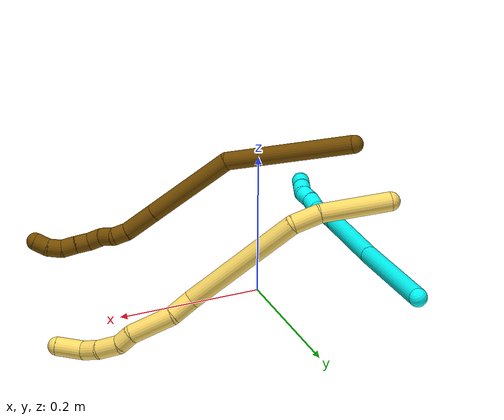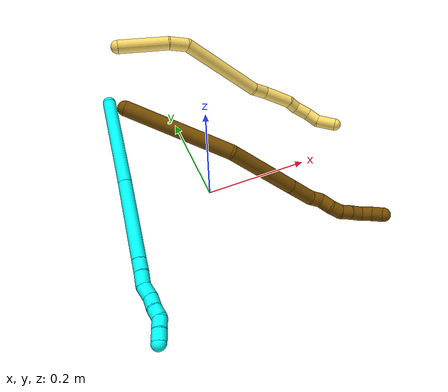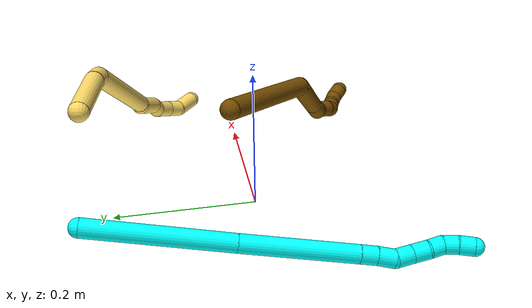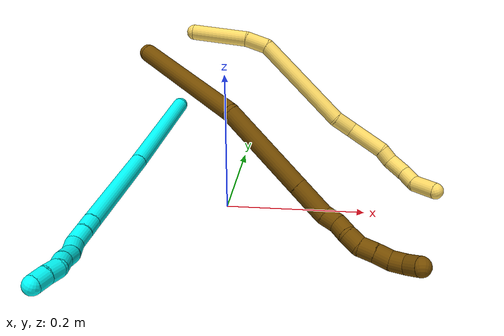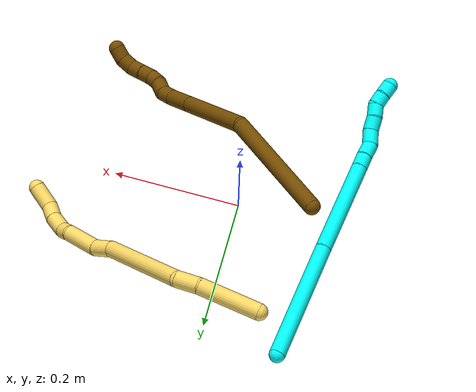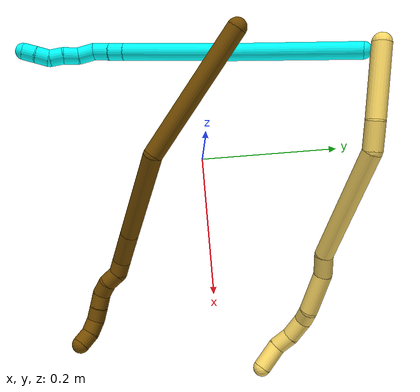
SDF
<sdf version="1.7">
 <world name="default">
  <model name="3">
   <static>0</static>
   <link name="3">
    <collision name="collision-cylinder-e_1_1_4">
     <pose>-0.032647 -0.086777 -0.024199 1.84275 -0.347669 -0.454565</pose>
     <geometry><cylinder><radius>0.0125</radius><length>0.191641</length></cylinder></geometry>
     <surface>
      <friction><ode><mu>1.16</mu><mu2>1.16</mu2><slip1>0</slip1><slip2>0</slip2></ode></friction>
      <contact><ode><kp>1e+06</kp><kd>1</kd><max_vel>0</max_vel><min_depth>0.001</min_depth></ode></contact>
     </surface>
    </collision>
    <visual name="visual-cylinder-e_1_1_4">
     <pose>-0.032647 -0.086777 -0.024199 1.84275 -0.347669 -0.454565</pose>
     <geometry><cylinder><radius>0.0125</radius><length>0.191641</length></cylinder></geometry>
     <material><ambient>0.003922 1 0.996078 1</ambient></material>
    </visual>
    <collision name="collision-cylinder-e_2_4_5">
     <pose>-0.092938 -0.243174 -0.066934 1.831 -0.366379 -0.473067</pose>
     <geometry><cylinder><radius>0.0125</radius><length>0.154334</length></cylinder></geometry>
     <surface>
      <friction><ode><mu>1.16</mu><mu2>1.16</mu2><slip1>0</slip1><slip2>0</slip2></ode></friction>
      <contact><ode><kp>1e+06</kp><kd>1</kd><max_vel>0</max_vel><min_depth>0.001</min_depth></ode></contact>
     </surface>
    </collision>
    <visual name="visual-cylinder-e_2_4_5">
     <pose>-0.092938 -0.243174 -0.066934 1.831 -0.366379 -0.473067</pose>
     <geometry><cylinder><radius>0.0125</radius><length>0.154334</length></cylinder></geometry>
     <material><ambient>0.003922 1 0.996078 1</ambient></material>
    </visual>
    <collision name="collision-cylinder-e_3_5_6">
     <pose>-0.124426 -0.322742 -0.088132 1.83229 -0.357245 -0.462038</pose>
     <geometry><cylinder><radius>0.0125</radius><length>0.021984</length></cylinder></geometry>
     <surface>
      <friction><ode><mu>1.16</mu><mu2>1.16</mu2><slip1>0</slip1><slip2>0</slip2></ode></friction>
      <contact><ode><kp>1e+06</kp><kd>1</kd><max_vel>0</max_vel><min_depth>0.001</min_depth></ode></contact>
     </surface>
    </collision>
    <visual name="visual-cylinder-e_3_5_6">
     <pose>-0.124426 -0.322742 -0.088132 1.83229 -0.357245 -0.462038</pose>
     <geometry><cylinder><radius>0.0125</radius><length>0.021984</length></cylinder></geometry>
     <material><ambient>0.003922 1 0.996078 1</ambient></material>
    </visual>
    <collision name="collision-cylinder-e_4_6_7">
     <pose>-0.132658 -0.343324 -0.094585 1.91325 -0.370706 -0.519792</pose>
     <geometry><cylinder><radius>0.0125</radius><length>0.024225</length></cylinder></geometry>
     <surface>
      <friction><ode><mu>1.16</mu><mu2>1.16</mu2><slip1>0</slip1><slip2>0</slip2></ode></friction>
      <contact><ode><kp>1e+06</kp><kd>1</kd><max_vel>0</max_vel><min_depth>0.001</min_depth></ode></contact>
     </surface>
    </collision>
    <visual name="visual-cylinder-e_4_6_7">
     <pose>-0.132658 -0.343324 -0.094585 1.91325 -0.370706 -0.519792</pose>
     <geometry><cylinder><radius>0.0125</radius><length>0.024225</length></cylinder></geometry>
     <material><ambient>0.003922 1 0.996078 1</ambient></material>
    </visual>
    <collision name="collision-cylinder-e_5_7_8">
     <pose>-0.138576 -0.366267 -0.097982 1.53877 -0.123598 -0.119711</pose>
     <geometry><cylinder><radius>0.0125</radius><length>0.02482</length></cylinder></geometry>
     <surface>
      <friction><ode><mu>1.16</mu><mu2>1.16</mu2><slip1>0</slip1><slip2>0</slip2></ode></friction>
      <contact><ode><kp>1e+06</kp><kd>1</kd><max_vel>0</max_vel><min_depth>0.001</min_depth></ode></contact>
     </surface>
    </collision>
    <visual name="visual-cylinder-e_5_7_8">
     <pose>-0.138576 -0.366267 -0.097982 1.53877 -0.123598 -0.119711</pose>
     <geometry><cylinder><radius>0.0125</radius><length>0.02482</length></cylinder></geometry>
     <material><ambient>0.003922 1 0.996078 1</ambient></material>
    </visual>
    <collision name="collision-cylinder-e_6_8_9">
     <pose>-0.144756 -0.38889 -0.096059 1.42369 -0.419589 -0.363351</pose>
     <geometry><cylinder><radius>0.0125</radius><length>0.022833</length></cylinder></geometry>
     <surface>
      <friction><ode><mu>1.16</mu><mu2>1.16</mu2><slip1>0</slip1><slip2>0</slip2></ode></friction>
      <contact><ode><kp>1e+06</kp><kd>1</kd><max_vel>0</max_vel><min_depth>0.001</min_depth></ode></contact>
     </surface>
    </collision>
    <visual name="visual-cylinder-e_6_8_9">
     <pose>-0.144756 -0.38889 -0.096059 1.42369 -0.419589 -0.363351</pose>
     <geometry><cylinder><radius>0.0125</radius><length>0.022833</length></cylinder></geometry>
     <material><ambient>0.003922 1 0.996078 1</ambient></material>
    </visual>
    <collision name="collision-cylinder-e_7_9_10">
     <pose>-0.151516 -0.408963 -0.093434 1.45881 -0.211547 -0.189232</pose>
     <geometry><cylinder><radius>0.0125</radius><length>0.020089</length></cylinder></geometry>
     <surface>
      <friction><ode><mu>1.16</mu><mu2>1.16</mu2><slip1>0</slip1><slip2>0</slip2></ode></friction>
      <contact><ode><kp>1e+06</kp><kd>1</kd><max_vel>0</max_vel><min_depth>0.001</min_depth></ode></contact>
     </surface>
    </collision>
    <visual name="visual-cylinder-e_7_9_10">
     <pose>-0.151516 -0.408963 -0.093434 1.45881 -0.211547 -0.189232</pose>
     <geometry><cylinder><radius>0.0125</radius><length>0.020089</length></cylinder></geometry>
     <material><ambient>0.003922 1 0.996078 1</ambient></material>
    </visual>
    <collision name="collision-cylinder-e_8_10_11">
     <pose>-0.159698 -0.426619 -0.093213 1.68136 -0.652509 -0.72277</pose>
     <geometry><cylinder><radius>0.0125</radius><length>0.020001</length></cylinder></geometry>
     <surface>
      <friction><ode><mu>1.16</mu><mu2>1.16</mu2><slip1>0</slip1><slip2>0</slip2></ode></friction>
      <contact><ode><kp>1e+06</kp><kd>1</kd><max_vel>0</max_vel><min_depth>0.001</min_depth></ode></contact>
     </surface>
    </collision>
    <visual name="visual-cylinder-e_8_10_11">
     <pose>-0.159698 -0.426619 -0.093213 1.68136 -0.652509 -0.72277</pose>
     <geometry><cylinder><radius>0.0125</radius><length>0.020001</length></cylinder></geometry>
     <material><ambient>0.003922 1 0.996078 1</ambient></material>
    </visual>
    <collision name="collision-cylinder-e_9_11_2">
     <pose>-0.171582 -0.442445 -0.096112 1.82051 -0.617676 -0.779268</pose>
     <geometry><cylinder><radius>0.0125</radius><length>0.020072</length></cylinder></geometry>
     <surface>
      <friction><ode><mu>1.16</mu><mu2>1.16</mu2><slip1>0</slip1><slip2>0</slip2></ode></friction>
      <contact><ode><kp>1e+06</kp><kd>1</kd><max_vel>0</max_vel><min_depth>0.001</min_depth></ode></contact>
     </surface>
    </collision>
    <visual name="visual-cylinder-e_9_11_2">
     <pose>-0.171582 -0.442445 -0.096112 1.82051 -0.617676 -0.779268</pose>
     <geometry><cylinder><radius>0.0125</radius><length>0.020072</length></cylinder></geometry>
     <material><ambient>0.003922 1 0.996078 1</ambient></material>
    </visual>
    <collision name="collision-sphere-2">
     <pose>-0.177394 -0.450373 -0.098133 0 -0 0</pose>
     <geometry><sphere><radius>0.0125</radius></sphere></geometry>
     <surface>
      <friction><ode><mu>1.16</mu><mu2>1.16</mu2><slip1>0</slip1><slip2>0</slip2></ode></friction>
      <contact><ode><kp>1e+06</kp><kd>1</kd><max_vel>0</max_vel><min_depth>0.001</min_depth></ode></contact>
     </surface>
    </collision>
    <visual name="visual-sphere-2">
     <pose>-0.177394 -0.450373 -0.098133 0 -0 0</pose>
     <geometry><sphere><radius>0.0125</radius></sphere></geometry>
     <material><ambient>0.003922 1 0.996078 1</ambient></material>
    </visual>
    <collision name="collision-sphere-11">
     <pose>-0.16577 -0.434517 -0.09409 0 -0 0</pose>
     <geometry><sphere><radius>0.0125</radius></sphere></geometry>
     <surface>
      <friction><ode><mu>1.16</mu><mu2>1.16</mu2><slip1>0</slip1><slip2>0</slip2></ode></friction>
      <contact><ode><kp>1e+06</kp><kd>1</kd><max_vel>0</max_vel><min_depth>0.001</min_depth></ode></contact>
     </surface>
    </collision>
    <visual name="visual-sphere-11">
     <pose>-0.16577 -0.434517 -0.09409 0 -0 0</pose>
     <geometry><sphere><radius>0.0125</radius></sphere></geometry>
     <material><ambient>0.003922 1 0.996078 1</ambient></material>
    </visual>
    <collision name="collision-sphere-10">
     <pose>-0.153625 -0.418722 -0.092336 0 -0 0</pose>
     <geometry><sphere><radius>0.0125</radius></sphere></geometry>
     <surface>
      <friction><ode><mu>1.16</mu><mu2>1.16</mu2><slip1>0</slip1><slip2>0</slip2></ode></friction>
      <contact><ode><kp>1e+06</kp><kd>1</kd><max_vel>0</max_vel><min_depth>0.001</min_depth></ode></contact>
     </surface>
    </collision>
    <visual name="visual-sphere-10">
     <pose>-0.153625 -0.418722 -0.092336 0 -0 0</pose>
     <geometry><sphere><radius>0.0125</radius></sphere></geometry>
     <material><ambient>0.003922 1 0.996078 1</ambient></material>
    </visual>
    <collision name="collision-sphere-9">
     <pose>-0.149407 -0.399204 -0.094531 0 -0 0</pose>
     <geometry><sphere><radius>0.0125</radius></sphere></geometry>
     <surface>
      <friction><ode><mu>1.16</mu><mu2>1.16</mu2><slip1>0</slip1><slip2>0</slip2></ode></friction>
      <contact><ode><kp>1e+06</kp><kd>1</kd><max_vel>0</max_vel><min_depth>0.001</min_depth></ode></contact>
     </surface>
    </collision>
    <visual name="visual-sphere-9">
     <pose>-0.149407 -0.399204 -0.094531 0 -0 0</pose>
     <geometry><sphere><radius>0.0125</radius></sphere></geometry>
     <material><ambient>0.003922 1 0.996078 1</ambient></material>
    </visual>
    <collision name="collision-sphere-4">
     <pose>-0.065294 -0.173553 -0.048398 0 -0 0</pose>
     <geometry><sphere><radius>0.0125</radius></sphere></geometry>
     <surface>
      <friction><ode><mu>1.16</mu><mu2>1.16</mu2><slip1>0</slip1><slip2>0</slip2></ode></friction>
      <contact><ode><kp>1e+06</kp><kd>1</kd><max_vel>0</max_vel><min_depth>0.001</min_depth></ode></contact>
     </surface>
    </collision>
    <visual name="visual-sphere-4">
     <pose>-0.065294 -0.173553 -0.048398 0 -0 0</pose>
     <geometry><sphere><radius>0.0125</radius></sphere></geometry>
     <material><ambient>0.003922 1 0.996078 1</ambient></material>
    </visual>
    <collision name="collision-sphere-1">
     <geometry><sphere><radius>0.0125</radius></sphere></geometry>
     <surface>
      <friction><ode><mu>1.16</mu><mu2>1.16</mu2><slip1>0</slip1><slip2>0</slip2></ode></friction>
      <contact><ode><kp>1e+06</kp><kd>1</kd><max_vel>0</max_vel><min_depth>0.001</min_depth></ode></contact>
     </surface>
    </collision>
    <visual name="visual-sphere-1">
     <geometry><sphere><radius>0.0125</radius></sphere></geometry>
     <material><ambient>0.003922 1 0.996078 1</ambient></material>
    </visual>
    <collision name="collision-sphere-8">
     <pose>-0.140106 -0.378577 -0.097588 0 -0 0</pose>
     <geometry><sphere><radius>0.0125</radius></sphere></geometry>
     <surface>
      <friction><ode><mu>1.16</mu><mu2>1.16</mu2><slip1>0</slip1><slip2>0</slip2></ode></friction>
      <contact><ode><kp>1e+06</kp><kd>1</kd><max_vel>0</max_vel><min_depth>0.001</min_depth></ode></contact>
     </surface>
    </collision>
    <visual name="visual-sphere-8">
     <pose>-0.140106 -0.378577 -0.097588 0 -0 0</pose>
     <geometry><sphere><radius>0.0125</radius></sphere></geometry>
     <material><ambient>0.003922 1 0.996078 1</ambient></material>
    </visual>
    <collision name="collision-sphere-5">
     <pose>-0.120582 -0.312794 -0.08547 0 -0 0</pose>
     <geometry><sphere><radius>0.0125</radius></sphere></geometry>
     <surface>
      <friction><ode><mu>1.16</mu><mu2>1.16</mu2><slip1>0</slip1><slip2>0</slip2></ode></friction>
      <contact><ode><kp>1e+06</kp><kd>1</kd><max_vel>0</max_vel><min_depth>0.001</min_depth></ode></contact>
     </surface>
    </collision>
    <visual name="visual-sphere-5">
     <pose>-0.120582 -0.312794 -0.08547 0 -0 0</pose>
     <geometry><sphere><radius>0.0125</radius></sphere></geometry>
     <material><ambient>0.003922 1 0.996078 1</ambient></material>
    </visual>
    <collision name="collision-sphere-6">
     <pose>-0.128269 -0.33269 -0.090794 0 -0 0</pose>
     <geometry><sphere><radius>0.0125</radius></sphere></geometry>
     <surface>
      <friction><ode><mu>1.16</mu><mu2>1.16</mu2><slip1>0</slip1><slip2>0</slip2></ode></friction>
      <contact><ode><kp>1e+06</kp><kd>1</kd><max_vel>0</max_vel><min_depth>0.001</min_depth></ode></contact>
     </surface>
    </collision>
    <visual name="visual-sphere-6">
     <pose>-0.128269 -0.33269 -0.090794 0 -0 0</pose>
     <geometry><sphere><radius>0.0125</radius></sphere></geometry>
     <material><ambient>0.003922 1 0.996078 1</ambient></material>
    </visual>
    <collision name="collision-sphere-7">
     <pose>-0.137046 -0.353958 -0.098376 0 -0 0</pose>
     <geometry><sphere><radius>0.0125</radius></sphere></geometry>
     <surface>
      <friction><ode><mu>1.16</mu><mu2>1.16</mu2><slip1>0</slip1><slip2>0</slip2></ode></friction>
      <contact><ode><kp>1e+06</kp><kd>1</kd><max_vel>0</max_vel><min_depth>0.001</min_depth></ode></contact>
     </surface>
    </collision>
    <visual name="visual-sphere-7">
     <pose>-0.137046 -0.353958 -0.098376 0 -0 0</pose>
     <geometry><sphere><radius>0.0125</radius></sphere></geometry>
     <material><ambient>0.003922 1 0.996078 1</ambient></material>
    </visual>
    <inertial>
     <pose>-0.085951 -0.226344 -0.058985 0 -0 0</pose>
     <mass>0.5</mass>
     <inertia>
      <ixx>0.000375</ixx>
      <ixy>0</ixy>
      <ixz>0</ixz>
      <iyy>-0.000497</iyy>
      <iyz>0</iyz>
      <izz>0.001142</izz>
     </inertia>
    </inertial>
   </link>
   <pose>-0.122049 0.23376 0.080188 0.097173 0.403066 0.343746</pose>
  </model>
  <model name="5">
   <static>0</static>
   <link name="5">
    <collision name="collision-cylinder-e_1_1_4">
     <pose>0.007008 -0.021032 -0.040772 2.66534 0.151588 0.606418</pose>
     <geometry><cylinder><radius>0.0125</radius><length>0.092818</length></cylinder></geometry>
     <surface>
      <friction><ode><mu>1.16</mu><mu2>1.16</mu2><slip1>0</slip1><slip2>0</slip2></ode></friction>
      <contact><ode><kp>1e+06</kp><kd>1</kd><max_vel>0</max_vel><min_depth>0.001</min_depth></ode></contact>
     </surface>
    </collision>
    <visual name="visual-cylinder-e_1_1_4">
     <pose>0.007008 -0.021032 -0.040772 2.66534 0.151588 0.606418</pose>
     <geometry><cylinder><radius>0.0125</radius><length>0.092818</length></cylinder></geometry>
     <material><ambient>1 0.858824 0.4 1</ambient></material>
    </visual>
    <collision name="collision-cylinder-e_2_4_5">
     <pose>0.016524 -0.053836 -0.095204 2.43034 0.138161 0.368353</pose>
     <geometry><cylinder><radius>0.0125</radius><length>0.036413</length></cylinder></geometry>
     <surface>
      <friction><ode><mu>1.16</mu><mu2>1.16</mu2><slip1>0</slip1><slip2>0</slip2></ode></friction>
      <contact><ode><kp>1e+06</kp><kd>1</kd><max_vel>0</max_vel><min_depth>0.001</min_depth></ode></contact>
     </surface>
    </collision>
    <visual name="visual-cylinder-e_2_4_5">
     <pose>0.016524 -0.053836 -0.095204 2.43034 0.138161 0.368353</pose>
     <geometry><cylinder><radius>0.0125</radius><length>0.036413</length></cylinder></geometry>
     <material><ambient>1 0.858824 0.4 1</ambient></material>
    </visual>
    <collision name="collision-cylinder-e_3_5_6">
     <pose>0.049347 -0.134756 -0.142565 2.02428 0.375412 0.590003</pose>
     <geometry><cylinder><radius>0.0125</radius><length>0.165364</length></cylinder></geometry>
     <surface>
      <friction><ode><mu>1.16</mu><mu2>1.16</mu2><slip1>0</slip1><slip2>0</slip2></ode></friction>
      <contact><ode><kp>1e+06</kp><kd>1</kd><max_vel>0</max_vel><min_depth>0.001</min_depth></ode></contact>
     </surface>
    </collision>
    <visual name="visual-cylinder-e_3_5_6">
     <pose>0.049347 -0.134756 -0.142565 2.02428 0.375412 0.590003</pose>
     <geometry><cylinder><radius>0.0125</radius><length>0.165364</length></cylinder></geometry>
     <material><ambient>1 0.858824 0.4 1</ambient></material>
    </visual>
    <collision name="collision-cylinder-e_4_6_7">
     <pose>0.080864 -0.21722 -0.184575 2.12877 0.076383 0.137562</pose>
     <geometry><cylinder><radius>0.0125</radius><length>0.031482</length></cylinder></geometry>
     <surface>
      <friction><ode><mu>1.16</mu><mu2>1.16</mu2><slip1>0</slip1><slip2>0</slip2></ode></friction>
      <contact><ode><kp>1e+06</kp><kd>1</kd><max_vel>0</max_vel><min_depth>0.001</min_depth></ode></contact>
     </surface>
    </collision>
    <visual name="visual-cylinder-e_4_6_7">
     <pose>0.080864 -0.21722 -0.184575 2.12877 0.076383 0.137562</pose>
     <geometry><cylinder><radius>0.0125</radius><length>0.031482</length></cylinder></geometry>
     <material><ambient>1 0.858824 0.4 1</ambient></material>
    </visual>
    <collision name="collision-cylinder-e_5_7_8">
     <pose>0.093099 -0.251537 -0.210481 2.26816 0.382829 0.787013</pose>
     <geometry><cylinder><radius>0.0125</radius><length>0.059075</length></cylinder></geometry>
     <surface>
      <friction><ode><mu>1.16</mu><mu2>1.16</mu2><slip1>0</slip1><slip2>0</slip2></ode></friction>
      <contact><ode><kp>1e+06</kp><kd>1</kd><max_vel>0</max_vel><min_depth>0.001</min_depth></ode></contact>
     </surface>
    </collision>
    <visual name="visual-cylinder-e_5_7_8">
     <pose>0.093099 -0.251537 -0.210481 2.26816 0.382829 0.787013</pose>
     <geometry><cylinder><radius>0.0125</radius><length>0.059075</length></cylinder></geometry>
     <material><ambient>1 0.858824 0.4 1</ambient></material>
    </visual>
    <collision name="collision-cylinder-e_6_8_9">
     <pose>0.108177 -0.281829 -0.231545 1.92813 0.387325 0.550777</pose>
     <geometry><cylinder><radius>0.0125</radius><length>0.021416</length></cylinder></geometry>
     <surface>
      <friction><ode><mu>1.16</mu><mu2>1.16</mu2><slip1>0</slip1><slip2>0</slip2></ode></friction>
      <contact><ode><kp>1e+06</kp><kd>1</kd><max_vel>0</max_vel><min_depth>0.001</min_depth></ode></contact>
     </surface>
    </collision>
    <visual name="visual-cylinder-e_6_8_9">
     <pose>0.108177 -0.281829 -0.231545 1.92813 0.387325 0.550777</pose>
     <geometry><cylinder><radius>0.0125</radius><length>0.021416</length></cylinder></geometry>
     <material><ambient>1 0.858824 0.4 1</ambient></material>
    </visual>
    <collision name="collision-cylinder-e_7_9_10">
     <pose>0.121859 -0.300107 -0.243104 2.30363 0.672815 1.33133</pose>
     <geometry><cylinder><radius>0.0125</radius><length>0.030931</length></cylinder></geometry>
     <surface>
      <friction><ode><mu>1.16</mu><mu2>1.16</mu2><slip1>0</slip1><slip2>0</slip2></ode></friction>
      <contact><ode><kp>1e+06</kp><kd>1</kd><max_vel>0</max_vel><min_depth>0.001</min_depth></ode></contact>
     </surface>
    </collision>
    <visual name="visual-cylinder-e_7_9_10">
     <pose>0.121859 -0.300107 -0.243104 2.30363 0.672815 1.33133</pose>
     <geometry><cylinder><radius>0.0125</radius><length>0.030931</length></cylinder></geometry>
     <material><ambient>1 0.858824 0.4 1</ambient></material>
    </visual>
    <collision name="collision-cylinder-e_8_10_11">
     <pose>0.141532 -0.314487 -0.256614 2.35886 0.919925 1.75254</pose>
     <geometry><cylinder><radius>0.0125</radius><length>0.025227</length></cylinder></geometry>
     <surface>
      <friction><ode><mu>1.16</mu><mu2>1.16</mu2><slip1>0</slip1><slip2>0</slip2></ode></friction>
      <contact><ode><kp>1e+06</kp><kd>1</kd><max_vel>0</max_vel><min_depth>0.001</min_depth></ode></contact>
     </surface>
    </collision>
    <visual name="visual-cylinder-e_8_10_11">
     <pose>0.141532 -0.314487 -0.256614 2.35886 0.919925 1.75254</pose>
     <geometry><cylinder><radius>0.0125</radius><length>0.025227</length></cylinder></geometry>
     <material><ambient>1 0.858824 0.4 1</ambient></material>
    </visual>
    <collision name="collision-cylinder-e_9_11_2">
     <pose>0.163115 -0.324327 -0.275966 2.83244 0.668308 2.29784</pose>
     <geometry><cylinder><radius>0.0125</radius><length>0.037274</length></cylinder></geometry>
     <surface>
      <friction><ode><mu>1.16</mu><mu2>1.16</mu2><slip1>0</slip1><slip2>0</slip2></ode></friction>
      <contact><ode><kp>1e+06</kp><kd>1</kd><max_vel>0</max_vel><min_depth>0.001</min_depth></ode></contact>
     </surface>
    </collision>
    <visual name="visual-cylinder-e_9_11_2">
     <pose>0.163115 -0.324327 -0.275966 2.83244 0.668308 2.29784</pose>
     <geometry><cylinder><radius>0.0125</radius><length>0.037274</length></cylinder></geometry>
     <material><ambient>1 0.858824 0.4 1</ambient></material>
    </visual>
    <collision name="collision-sphere-2">
     <pose>0.174664 -0.328777 -0.2899 0 -0 0</pose>
     <geometry><sphere><radius>0.0125</radius></sphere></geometry>
     <surface>
      <friction><ode><mu>1.16</mu><mu2>1.16</mu2><slip1>0</slip1><slip2>0</slip2></ode></friction>
      <contact><ode><kp>1e+06</kp><kd>1</kd><max_vel>0</max_vel><min_depth>0.001</min_depth></ode></contact>
     </surface>
    </collision>
    <visual name="visual-sphere-2">
     <pose>0.174664 -0.328777 -0.2899 0 -0 0</pose>
     <geometry><sphere><radius>0.0125</radius></sphere></geometry>
     <material><ambient>1 0.858824 0.4 1</ambient></material>
    </visual>
    <collision name="collision-sphere-11">
     <pose>0.151567 -0.319876 -0.262032 0 -0 0</pose>
     <geometry><sphere><radius>0.0125</radius></sphere></geometry>
     <surface>
      <friction><ode><mu>1.16</mu><mu2>1.16</mu2><slip1>0</slip1><slip2>0</slip2></ode></friction>
      <contact><ode><kp>1e+06</kp><kd>1</kd><max_vel>0</max_vel><min_depth>0.001</min_depth></ode></contact>
     </surface>
    </collision>
    <visual name="visual-sphere-11">
     <pose>0.151567 -0.319876 -0.262032 0 -0 0</pose>
     <geometry><sphere><radius>0.0125</radius></sphere></geometry>
     <material><ambient>1 0.858824 0.4 1</ambient></material>
    </visual>
    <collision name="collision-sphere-10">
     <pose>0.131497 -0.309097 -0.251196 0 -0 0</pose>
     <geometry><sphere><radius>0.0125</radius></sphere></geometry>
     <surface>
      <friction><ode><mu>1.16</mu><mu2>1.16</mu2><slip1>0</slip1><slip2>0</slip2></ode></friction>
      <contact><ode><kp>1e+06</kp><kd>1</kd><max_vel>0</max_vel><min_depth>0.001</min_depth></ode></contact>
     </surface>
    </collision>
    <visual name="visual-sphere-10">
     <pose>0.131497 -0.309097 -0.251196 0 -0 0</pose>
     <geometry><sphere><radius>0.0125</radius></sphere></geometry>
     <material><ambient>1 0.858824 0.4 1</ambient></material>
    </visual>
    <collision name="collision-sphere-9">
     <pose>0.112221 -0.291117 -0.235013 0 -0 0</pose>
     <geometry><sphere><radius>0.0125</radius></sphere></geometry>
     <surface>
      <friction><ode><mu>1.16</mu><mu2>1.16</mu2><slip1>0</slip1><slip2>0</slip2></ode></friction>
      <contact><ode><kp>1e+06</kp><kd>1</kd><max_vel>0</max_vel><min_depth>0.001</min_depth></ode></contact>
     </surface>
    </collision>
    <visual name="visual-sphere-9">
     <pose>0.112221 -0.291117 -0.235013 0 -0 0</pose>
     <geometry><sphere><radius>0.0125</radius></sphere></geometry>
     <material><ambient>1 0.858824 0.4 1</ambient></material>
    </visual>
    <collision name="collision-sphere-4">
     <pose>0.014016 -0.042064 -0.081543 0 -0 0</pose>
     <geometry><sphere><radius>0.0125</radius></sphere></geometry>
     <surface>
      <friction><ode><mu>1.16</mu><mu2>1.16</mu2><slip1>0</slip1><slip2>0</slip2></ode></friction>
      <contact><ode><kp>1e+06</kp><kd>1</kd><max_vel>0</max_vel><min_depth>0.001</min_depth></ode></contact>
     </surface>
    </collision>
    <visual name="visual-sphere-4">
     <pose>0.014016 -0.042064 -0.081543 0 -0 0</pose>
     <geometry><sphere><radius>0.0125</radius></sphere></geometry>
     <material><ambient>1 0.858824 0.4 1</ambient></material>
    </visual>
    <collision name="collision-sphere-1">
     <geometry><sphere><radius>0.0125</radius></sphere></geometry>
     <surface>
      <friction><ode><mu>1.16</mu><mu2>1.16</mu2><slip1>0</slip1><slip2>0</slip2></ode></friction>
      <contact><ode><kp>1e+06</kp><kd>1</kd><max_vel>0</max_vel><min_depth>0.001</min_depth></ode></contact>
     </surface>
    </collision>
    <visual name="visual-sphere-1">
     <geometry><sphere><radius>0.0125</radius></sphere></geometry>
     <material><ambient>1 0.858824 0.4 1</ambient></material>
    </visual>
    <collision name="collision-sphere-8">
     <pose>0.104132 -0.27254 -0.228077 0 -0 0</pose>
     <geometry><sphere><radius>0.0125</radius></sphere></geometry>
     <surface>
      <friction><ode><mu>1.16</mu><mu2>1.16</mu2><slip1>0</slip1><slip2>0</slip2></ode></friction>
      <contact><ode><kp>1e+06</kp><kd>1</kd><max_vel>0</max_vel><min_depth>0.001</min_depth></ode></contact>
     </surface>
    </collision>
    <visual name="visual-sphere-8">
     <pose>0.104132 -0.27254 -0.228077 0 -0 0</pose>
     <geometry><sphere><radius>0.0125</radius></sphere></geometry>
     <material><ambient>1 0.858824 0.4 1</ambient></material>
    </visual>
    <collision name="collision-sphere-5">
     <pose>0.019031 -0.065608 -0.108865 0 -0 0</pose>
     <geometry><sphere><radius>0.0125</radius></sphere></geometry>
     <surface>
      <friction><ode><mu>1.16</mu><mu2>1.16</mu2><slip1>0</slip1><slip2>0</slip2></ode></friction>
      <contact><ode><kp>1e+06</kp><kd>1</kd><max_vel>0</max_vel><min_depth>0.001</min_depth></ode></contact>
     </surface>
    </collision>
    <visual name="visual-sphere-5">
     <pose>0.019031 -0.065608 -0.108865 0 -0 0</pose>
     <geometry><sphere><radius>0.0125</radius></sphere></geometry>
     <material><ambient>1 0.858824 0.4 1</ambient></material>
    </visual>
    <collision name="collision-sphere-6">
     <pose>0.079663 -0.203905 -0.176265 0 -0 0</pose>
     <geometry><sphere><radius>0.0125</radius></sphere></geometry>
     <surface>
      <friction><ode><mu>1.16</mu><mu2>1.16</mu2><slip1>0</slip1><slip2>0</slip2></ode></friction>
      <contact><ode><kp>1e+06</kp><kd>1</kd><max_vel>0</max_vel><min_depth>0.001</min_depth></ode></contact>
     </surface>
    </collision>
    <visual name="visual-sphere-6">
     <pose>0.079663 -0.203905 -0.176265 0 -0 0</pose>
     <geometry><sphere><radius>0.0125</radius></sphere></geometry>
     <material><ambient>1 0.858824 0.4 1</ambient></material>
    </visual>
    <collision name="collision-sphere-7">
     <pose>0.082065 -0.230535 -0.192885 0 -0 0</pose>
     <geometry><sphere><radius>0.0125</radius></sphere></geometry>
     <surface>
      <friction><ode><mu>1.16</mu><mu2>1.16</mu2><slip1>0</slip1><slip2>0</slip2></ode></friction>
      <contact><ode><kp>1e+06</kp><kd>1</kd><max_vel>0</max_vel><min_depth>0.001</min_depth></ode></contact>
     </surface>
    </collision>
    <visual name="visual-sphere-7">
     <pose>0.082065 -0.230535 -0.192885 0 -0 0</pose>
     <geometry><sphere><radius>0.0125</radius></sphere></geometry>
     <material><ambient>1 0.858824 0.4 1</ambient></material>
    </visual>
    <inertial>
     <pose>0.066389 -0.166471 -0.156619 0 -0 0</pose>
     <mass>0.5</mass>
     <inertia>
      <ixx>0.000649</ixx>
      <ixy>0</ixy>
      <ixz>0</ixz>
      <iyy>0.000115</iyy>
      <iyz>0</iyz>
      <izz>0.000188</izz>
     </inertia>
    </inertial>
   </link>
   <pose>-0.086492 0.21572 0.216304 1.99717 0.154159 -1.59864</pose>
  </model>
  <model name="12">
   <static>0</static>
   <link name="12">
    <collision name="collision-cylinder-e_1_1_4">
     <pose>0.05645 -0.035584 0.062661 0.516467 0.664522 0.181776</pose>
     <geometry><cylinder><radius>0.0125</radius><length>0.183078</length></cylinder></geometry>
     <surface>
      <friction><ode><mu>1.16</mu><mu2>1.16</mu2><slip1>0</slip1><slip2>0</slip2></ode></friction>
      <contact><ode><kp>1e+06</kp><kd>1</kd><max_vel>0</max_vel><min_depth>0.001</min_depth></ode></contact>
     </surface>
    </collision>
    <visual name="visual-cylinder-e_1_1_4">
     <pose>0.05645 -0.035584 0.062661 0.516467 0.664522 0.181776</pose>
     <geometry><cylinder><radius>0.0125</radius><length>0.183078</length></cylinder></geometry>
     <material><ambient>0.466667 0.301961 0 1</ambient></material>
    </visual>
    <collision name="collision-cylinder-e_2_4_5">
     <pose>0.132761 -0.117412 0.164816 0.863973 0.31566 0.146486</pose>
     <geometry><cylinder><radius>0.0125</radius><length>0.127947</length></cylinder></geometry>
     <surface>
      <friction><ode><mu>1.16</mu><mu2>1.16</mu2><slip1>0</slip1><slip2>0</slip2></ode></friction>
      <contact><ode><kp>1e+06</kp><kd>1</kd><max_vel>0</max_vel><min_depth>0.001</min_depth></ode></contact>
     </surface>
    </collision>
    <visual name="visual-cylinder-e_2_4_5">
     <pose>0.132761 -0.117412 0.164816 0.863973 0.31566 0.146486</pose>
     <geometry><cylinder><radius>0.0125</radius><length>0.127947</length></cylinder></geometry>
     <material><ambient>0.466667 0.301961 0 1</ambient></material>
    </visual>
    <collision name="collision-cylinder-e_3_5_6">
     <pose>0.160042 -0.18105 0.219099 0.866129 0.314269 0.146244</pose>
     <geometry><cylinder><radius>0.0125</radius><length>0.048015</length></cylinder></geometry>
     <surface>
      <friction><ode><mu>1.16</mu><mu2>1.16</mu2><slip1>0</slip1><slip2>0</slip2></ode></friction>
      <contact><ode><kp>1e+06</kp><kd>1</kd><max_vel>0</max_vel><min_depth>0.001</min_depth></ode></contact>
     </surface>
    </collision>
    <visual name="visual-cylinder-e_3_5_6">
     <pose>0.160042 -0.18105 0.219099 0.866129 0.314269 0.146244</pose>
     <geometry><cylinder><radius>0.0125</radius><length>0.048015</length></cylinder></geometry>
     <material><ambient>0.466667 0.301961 0 1</ambient></material>
    </visual>
    <collision name="collision-cylinder-e_4_6_7">
     <pose>0.173188 -0.204838 0.239035 0.893208 0.608961 0.298733</pose>
     <geometry><cylinder><radius>0.0125</radius><length>0.020014</length></cylinder></geometry>
     <surface>
      <friction><ode><mu>1.16</mu><mu2>1.16</mu2><slip1>0</slip1><slip2>0</slip2></ode></friction>
      <contact><ode><kp>1e+06</kp><kd>1</kd><max_vel>0</max_vel><min_depth>0.001</min_depth></ode></contact>
     </surface>
    </collision>
    <visual name="visual-cylinder-e_4_6_7">
     <pose>0.173188 -0.204838 0.239035 0.893208 0.608961 0.298733</pose>
     <geometry><cylinder><radius>0.0125</radius><length>0.020014</length></cylinder></geometry>
     <material><ambient>0.466667 0.301961 0 1</ambient></material>
    </visual>
    <collision name="collision-cylinder-e_5_7_8">
     <pose>0.184323 -0.213633 0.252746 0.273187 0.546504 0.077006</pose>
     <geometry><cylinder><radius>0.0125</radius><length>0.020824</length></cylinder></geometry>
     <surface>
      <friction><ode><mu>1.16</mu><mu2>1.16</mu2><slip1>0</slip1><slip2>0</slip2></ode></friction>
      <contact><ode><kp>1e+06</kp><kd>1</kd><max_vel>0</max_vel><min_depth>0.001</min_depth></ode></contact>
     </surface>
    </collision>
    <visual name="visual-cylinder-e_5_7_8">
     <pose>0.184323 -0.213633 0.252746 0.273187 0.546504 0.077006</pose>
     <geometry><cylinder><radius>0.0125</radius><length>0.020824</length></cylinder></geometry>
     <material><ambient>0.466667 0.301961 0 1</ambient></material>
    </visual>
    <collision name="collision-cylinder-e_6_8_9">
     <pose>0.194421 -0.221516 0.268294 0.66567 0.485749 0.170886</pose>
     <geometry><cylinder><radius>0.0125</radius><length>0.020077</length></cylinder></geometry>
     <surface>
      <friction><ode><mu>1.16</mu><mu2>1.16</mu2><slip1>0</slip1><slip2>0</slip2></ode></friction>
      <contact><ode><kp>1e+06</kp><kd>1</kd><max_vel>0</max_vel><min_depth>0.001</min_depth></ode></contact>
     </surface>
    </collision>
    <visual name="visual-cylinder-e_6_8_9">
     <pose>0.194421 -0.221516 0.268294 0.66567 0.485749 0.170886</pose>
     <geometry><cylinder><radius>0.0125</radius><length>0.020077</length></cylinder></geometry>
     <material><ambient>0.466667 0.301961 0 1</ambient></material>
    </visual>
    <collision name="collision-cylinder-e_7_9_10">
     <pose>0.206118 -0.232996 0.27917 0.994907 0.77551 0.436494</pose>
     <geometry><cylinder><radius>0.0125</radius><length>0.020028</length></cylinder></geometry>
     <surface>
      <friction><ode><mu>1.16</mu><mu2>1.16</mu2><slip1>0</slip1><slip2>0</slip2></ode></friction>
      <contact><ode><kp>1e+06</kp><kd>1</kd><max_vel>0</max_vel><min_depth>0.001</min_depth></ode></contact>
     </surface>
    </collision>
    <visual name="visual-cylinder-e_7_9_10">
     <pose>0.206118 -0.232996 0.27917 0.994907 0.77551 0.436494</pose>
     <geometry><cylinder><radius>0.0125</radius><length>0.020028</length></cylinder></geometry>
     <material><ambient>0.466667 0.301961 0 1</ambient></material>
    </visual>
    <collision name="collision-cylinder-e_8_10_11">
     <pose>0.219632 -0.245215 0.287434 0.958607 0.707565 0.379278</pose>
     <geometry><cylinder><radius>0.0125</radius><length>0.02001</length></cylinder></geometry>
     <surface>
      <friction><ode><mu>1.16</mu><mu2>1.16</mu2><slip1>0</slip1><slip2>0</slip2></ode></friction>
      <contact><ode><kp>1e+06</kp><kd>1</kd><max_vel>0</max_vel><min_depth>0.001</min_depth></ode></contact>
     </surface>
    </collision>
    <visual name="visual-cylinder-e_8_10_11">
     <pose>0.219632 -0.245215 0.287434 0.958607 0.707565 0.379278</pose>
     <geometry><cylinder><radius>0.0125</radius><length>0.02001</length></cylinder></geometry>
     <material><ambient>0.466667 0.301961 0 1</ambient></material>
    </visual>
    <collision name="collision-cylinder-e_9_11_12">
     <pose>0.234797 -0.254668 0.295625 0.701642 1.04691 0.416313</pose>
     <geometry><cylinder><radius>0.0125</radius><length>0.020007</length></cylinder></geometry>
     <surface>
      <friction><ode><mu>1.16</mu><mu2>1.16</mu2><slip1>0</slip1><slip2>0</slip2></ode></friction>
      <contact><ode><kp>1e+06</kp><kd>1</kd><max_vel>0</max_vel><min_depth>0.001</min_depth></ode></contact>
     </surface>
    </collision>
    <visual name="visual-cylinder-e_9_11_12">
     <pose>0.234797 -0.254668 0.295625 0.701642 1.04691 0.416313</pose>
     <geometry><cylinder><radius>0.0125</radius><length>0.020007</length></cylinder></geometry>
     <material><ambient>0.466667 0.301961 0 1</ambient></material>
    </visual>
    <collision name="collision-cylinder-e_10_12_2">
     <pose>0.252464 -0.257488 0.303776 -0.094343 1.12096 -0.059238</pose>
     <geometry><cylinder><radius>0.0125</radius><length>0.020001</length></cylinder></geometry>
     <surface>
      <friction><ode><mu>1.16</mu><mu2>1.16</mu2><slip1>0</slip1><slip2>0</slip2></ode></friction>
      <contact><ode><kp>1e+06</kp><kd>1</kd><max_vel>0</max_vel><min_depth>0.001</min_depth></ode></contact>
     </surface>
    </collision>
    <visual name="visual-cylinder-e_10_12_2">
     <pose>0.252464 -0.257488 0.303776 -0.094343 1.12096 -0.059238</pose>
     <geometry><cylinder><radius>0.0125</radius><length>0.020001</length></cylinder></geometry>
     <material><ambient>0.466667 0.301961 0 1</ambient></material>
    </visual>
    <collision name="collision-sphere-2">
     <pose>0.261469 -0.257079 0.308105 0 -0 0</pose>
     <geometry><sphere><radius>0.0125</radius></sphere></geometry>
     <surface>
      <friction><ode><mu>1.16</mu><mu2>1.16</mu2><slip1>0</slip1><slip2>0</slip2></ode></friction>
      <contact><ode><kp>1e+06</kp><kd>1</kd><max_vel>0</max_vel><min_depth>0.001</min_depth></ode></contact>
     </surface>
    </collision>
    <visual name="visual-sphere-2">
     <pose>0.261469 -0.257079 0.308105 0 -0 0</pose>
     <geometry><sphere><radius>0.0125</radius></sphere></geometry>
     <material><ambient>0.466667 0.301961 0 1</ambient></material>
    </visual>
    <collision name="collision-sphere-12">
     <pose>0.243458 -0.257898 0.299447 0 -0 0</pose>
     <geometry><sphere><radius>0.0125</radius></sphere></geometry>
     <surface>
      <friction><ode><mu>1.16</mu><mu2>1.16</mu2><slip1>0</slip1><slip2>0</slip2></ode></friction>
      <contact><ode><kp>1e+06</kp><kd>1</kd><max_vel>0</max_vel><min_depth>0.001</min_depth></ode></contact>
     </surface>
    </collision>
    <visual name="visual-sphere-12">
     <pose>0.243458 -0.257898 0.299447 0 -0 0</pose>
     <geometry><sphere><radius>0.0125</radius></sphere></geometry>
     <material><ambient>0.466667 0.301961 0 1</ambient></material>
    </visual>
    <collision name="collision-sphere-11">
     <pose>0.226135 -0.251438 0.291803 0 -0 0</pose>
     <geometry><sphere><radius>0.0125</radius></sphere></geometry>
     <surface>
      <friction><ode><mu>1.16</mu><mu2>1.16</mu2><slip1>0</slip1><slip2>0</slip2></ode></friction>
      <contact><ode><kp>1e+06</kp><kd>1</kd><max_vel>0</max_vel><min_depth>0.001</min_depth></ode></contact>
     </surface>
    </collision>
    <visual name="visual-sphere-11">
     <pose>0.226135 -0.251438 0.291803 0 -0 0</pose>
     <geometry><sphere><radius>0.0125</radius></sphere></geometry>
     <material><ambient>0.466667 0.301961 0 1</ambient></material>
    </visual>
    <collision name="collision-sphere-10">
     <pose>0.213129 -0.238993 0.283064 0 -0 0</pose>
     <geometry><sphere><radius>0.0125</radius></sphere></geometry>
     <surface>
      <friction><ode><mu>1.16</mu><mu2>1.16</mu2><slip1>0</slip1><slip2>0</slip2></ode></friction>
      <contact><ode><kp>1e+06</kp><kd>1</kd><max_vel>0</max_vel><min_depth>0.001</min_depth></ode></contact>
     </surface>
    </collision>
    <visual name="visual-sphere-10">
     <pose>0.213129 -0.238993 0.283064 0 -0 0</pose>
     <geometry><sphere><radius>0.0125</radius></sphere></geometry>
     <material><ambient>0.466667 0.301961 0 1</ambient></material>
    </visual>
    <collision name="collision-sphere-9">
     <pose>0.199108 -0.226998 0.275276 0 -0 0</pose>
     <geometry><sphere><radius>0.0125</radius></sphere></geometry>
     <surface>
      <friction><ode><mu>1.16</mu><mu2>1.16</mu2><slip1>0</slip1><slip2>0</slip2></ode></friction>
      <contact><ode><kp>1e+06</kp><kd>1</kd><max_vel>0</max_vel><min_depth>0.001</min_depth></ode></contact>
     </surface>
    </collision>
    <visual name="visual-sphere-9">
     <pose>0.199108 -0.226998 0.275276 0 -0 0</pose>
     <geometry><sphere><radius>0.0125</radius></sphere></geometry>
     <material><ambient>0.466667 0.301961 0 1</ambient></material>
    </visual>
    <collision name="collision-sphere-4">
     <pose>0.112901 -0.071168 0.125323 0 -0 0</pose>
     <geometry><sphere><radius>0.0125</radius></sphere></geometry>
     <surface>
      <friction><ode><mu>1.16</mu><mu2>1.16</mu2><slip1>0</slip1><slip2>0</slip2></ode></friction>
      <contact><ode><kp>1e+06</kp><kd>1</kd><max_vel>0</max_vel><min_depth>0.001</min_depth></ode></contact>
     </surface>
    </collision>
    <visual name="visual-sphere-4">
     <pose>0.112901 -0.071168 0.125323 0 -0 0</pose>
     <geometry><sphere><radius>0.0125</radius></sphere></geometry>
     <material><ambient>0.466667 0.301961 0 1</ambient></material>
    </visual>
    <collision name="collision-sphere-1">
     <geometry><sphere><radius>0.0125</radius></sphere></geometry>
     <surface>
      <friction><ode><mu>1.16</mu><mu2>1.16</mu2><slip1>0</slip1><slip2>0</slip2></ode></friction>
      <contact><ode><kp>1e+06</kp><kd>1</kd><max_vel>0</max_vel><min_depth>0.001</min_depth></ode></contact>
     </surface>
    </collision>
    <visual name="visual-sphere-1">
     <geometry><sphere><radius>0.0125</radius></sphere></geometry>
     <material><ambient>0.466667 0.301961 0 1</ambient></material>
    </visual>
    <collision name="collision-sphere-8">
     <pose>0.189734 -0.216033 0.261312 0 -0 0</pose>
     <geometry><sphere><radius>0.0125</radius></sphere></geometry>
     <surface>
      <friction><ode><mu>1.16</mu><mu2>1.16</mu2><slip1>0</slip1><slip2>0</slip2></ode></friction>
      <contact><ode><kp>1e+06</kp><kd>1</kd><max_vel>0</max_vel><min_depth>0.001</min_depth></ode></contact>
     </surface>
    </collision>
    <visual name="visual-sphere-8">
     <pose>0.189734 -0.216033 0.261312 0 -0 0</pose>
     <geometry><sphere><radius>0.0125</radius></sphere></geometry>
     <material><ambient>0.466667 0.301961 0 1</ambient></material>
    </visual>
    <collision name="collision-sphere-5">
     <pose>0.152621 -0.163656 0.204309 0 -0 0</pose>
     <geometry><sphere><radius>0.0125</radius></sphere></geometry>
     <surface>
      <friction><ode><mu>1.16</mu><mu2>1.16</mu2><slip1>0</slip1><slip2>0</slip2></ode></friction>
      <contact><ode><kp>1e+06</kp><kd>1</kd><max_vel>0</max_vel><min_depth>0.001</min_depth></ode></contact>
     </surface>
    </collision>
    <visual name="visual-sphere-5">
     <pose>0.152621 -0.163656 0.204309 0 -0 0</pose>
     <geometry><sphere><radius>0.0125</radius></sphere></geometry>
     <material><ambient>0.466667 0.301961 0 1</ambient></material>
    </visual>
    <collision name="collision-sphere-6">
     <pose>0.167463 -0.198443 0.233889 0 -0 0</pose>
     <geometry><sphere><radius>0.0125</radius></sphere></geometry>
     <surface>
      <friction><ode><mu>1.16</mu><mu2>1.16</mu2><slip1>0</slip1><slip2>0</slip2></ode></friction>
      <contact><ode><kp>1e+06</kp><kd>1</kd><max_vel>0</max_vel><min_depth>0.001</min_depth></ode></contact>
     </surface>
    </collision>
    <visual name="visual-sphere-6">
     <pose>0.167463 -0.198443 0.233889 0 -0 0</pose>
     <geometry><sphere><radius>0.0125</radius></sphere></geometry>
     <material><ambient>0.466667 0.301961 0 1</ambient></material>
    </visual>
    <collision name="collision-sphere-7">
     <pose>0.178912 -0.211233 0.24418 0 -0 0</pose>
     <geometry><sphere><radius>0.0125</radius></sphere></geometry>
     <surface>
      <friction><ode><mu>1.16</mu><mu2>1.16</mu2><slip1>0</slip1><slip2>0</slip2></ode></friction>
      <contact><ode><kp>1e+06</kp><kd>1</kd><max_vel>0</max_vel><min_depth>0.001</min_depth></ode></contact>
     </surface>
    </collision>
    <visual name="visual-sphere-7">
     <pose>0.178912 -0.211233 0.24418 0 -0 0</pose>
     <geometry><sphere><radius>0.0125</radius></sphere></geometry>
     <material><ambient>0.466667 0.301961 0 1</ambient></material>
    </visual>
    <inertial>
     <pose>0.128967 -0.126088 0.163693 0 -0 0</pose>
     <mass>0.5</mass>
     <inertia>
      <ixx>0.00071</ixx>
      <ixy>0</ixy>
      <ixz>0</ixz>
      <iyy>0.000692</iyy>
      <iyz>0</iyz>
      <izz>-1.8e-05</izz>
     </inertia>
    </inertial>
   </link>
   <pose>-0.118139 0.045893 0.21763 2.20416 -0.576653 -0.351085</pose>
  </model>
 </world>
</sdf>
